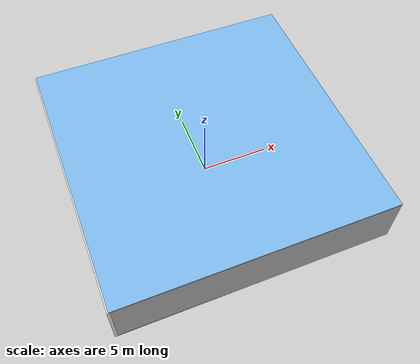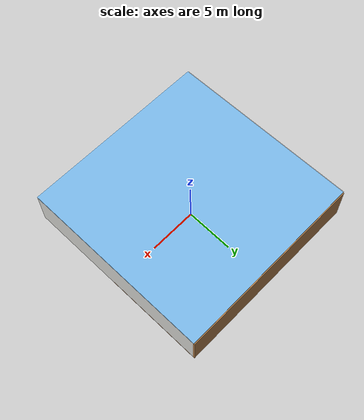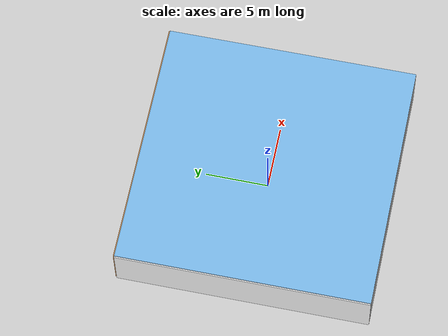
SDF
<sdf version="1.4">
 <world name="default">
  <physics type="ode">
   <max_step_size>0.001</max_step_size>
   <real_time_factor>1</real_time_factor>
   <real_time_update_rate>1000</real_time_update_rate>
   <gravity>0 0 -9.8</gravity>
  </physics>
  <scene><ambient>0.4 0.4 0.4 1</ambient><background>0.7 0.7 0.7 1</background><shadows>1</shadows></scene>
  <model name="Surrounding">
   <static>1</static>
   <link name="Ceiling">
    <collision name="Ceiling_Collision"><geometry><box><size>20 20 0.1</size></box></geometry></collision>
    <visual name="Ceiling_Visual">
     <geometry><box><size>20 20 0.1</size></box></geometry>
     <material>
      <script><uri>file://media/materials/scripts/gazebo.material</uri><name>Gazebo/SkyBlue</name></script>
     </material>
    </visual>
    <pose>0 0 4.05 0 0 0</pose>
   </link>
   <link name="Wall_South">
    <collision name="Wall_South_Collision">
     <geometry><box><size>20 0 4</size></box></geometry>
     <pose>0 0 2 0 -0 0</pose>
    </collision>
    <visual name="Wall_South_Visual">
     <pose>0 0 2 0 -0 0</pose>
     <geometry><box><size>20 0 4</size></box></geometry>
     <material>
      <script><uri>file://media/materials/scripts/gazebo.material</uri><name>Gazebo/JointAnchor</name></script>
     </material>
    </visual>
    <velocity_decay><linear>0</linear><angular>0</angular></velocity_decay>
    <pose>0 -10 0 0 -0 0</pose>
   </link>
   <link name="Wall_East">
    <collision name="Wall_21_Collision">
     <geometry><box><size>20 0 4</size></box></geometry>
     <pose>0 0 2 0 -0 0</pose>
    </collision>
    <visual name="Wall_21_Visual">
     <pose>0 0 2 0 -0 0</pose>
     <geometry><box><size>20 0 4</size></box></geometry>
     <material>
      <script><uri>file://media/materials/scripts/gazebo.material</uri><name>Gazebo/CeilingTiled</name></script>
     </material>
    </visual>
    <velocity_decay><linear>0</linear><angular>0</angular></velocity_decay>
    <pose>10 0 0 0 -0 1.5708</pose>
   </link>
   <link name="Wall_North">
    <collision name="Wall_22_Collision">
     <geometry><box><size>20 0.2 4</size></box></geometry>
     <pose>0 0 2 0 -0 0</pose>
    </collision>
    <visual name="Wall_22_Visual">
     <pose>0 0 2 0 -0 0</pose>
     <geometry><box><size>20 0.2 4</size></box></geometry>
     <material>
      <script><uri>file://media/materials/scripts/gazebo.material</uri><name>Gazebo/Wood</name></script>
     </material>
    </visual>
    <velocity_decay><linear>0</linear><angular>0</angular></velocity_decay>
    <pose>0 10 0 0 -0 0</pose>
   </link>
   <link name="Wall_West">
    <collision name="Wall_23_Collision">
     <geometry><box><size>20 0.2 4</size></box></geometry>
     <pose>0 0 2 0 -0 0</pose>
    </collision>
    <visual name="Wall_23_Visual">
     <pose>0 0 2 0 -0 0</pose>
     <geometry><box><size>20 0.2 4</size></box></geometry>
     <material>
      <script><uri>file://media/materials/scripts/gazebo.material</uri><name>Gazebo/White</name></script>
     </material>
    </visual>
    <velocity_decay><linear>0</linear><angular>0</angular></velocity_decay>
    <pose>-10 0 0 0 0 -1.5708</pose>
   </link>
   <link name="Ground_link">
    <collision name="collision">
     <pose>0 0 .05 0 -0 0</pose>
     <geometry><box><size>20 20 0.1</size></box></geometry>
    </collision>
    <visual name="visual">
     <pose>0 0 .05 0 -0 0</pose>
     <geometry><box><size>20 20 0.1</size></box></geometry>
     <material>
      <script><uri>file://media/materials/scripts/gazebo.material</uri><name>Gazebo/WoodPallet</name></script>
     </material>
    </visual>
   </link>
   <static>1</static>
  </model>
  <spherical_coordinates>
   <surface_model>EARTH_WGS84</surface_model>
   <latitude_deg>0</latitude_deg>
   <longitude_deg>0</longitude_deg>
   <elevation>0</elevation>
   <heading_deg>0</heading_deg>
  </spherical_coordinates>
  <light name="lightball_0" type="diffuse">
   <diffuse>0.8 0.8 0.8 1</diffuse>
   <specular>0.2 0.2 0.2 1</specular>
   <attenuation>
    <range>100</range>
    <constant>0.7</constant>
    <linear>0.01</linear>
    <quadratic>0.001</quadratic>
   </attenuation>
   <direction>-0.5 0.1 -0.9</direction>
   <pose>0.725215382481 -1.34924403638 1.90910680966 0 0 0</pose>
  </light>
  <light name="lightball_1" type="diffuse">
   <diffuse>0.8 0.8 0.8 1</diffuse>
   <specular>0.2 0.2 0.2 1</specular>
   <attenuation>
    <range>100</range>
    <constant>0.7</constant>
    <linear>0.01</linear>
    <quadratic>0.001</quadratic>
   </attenuation>
   <direction>-0.5 0.1 -0.9</direction>
   <pose>-6.66375086045 -7.29081741986 3.76870693468 0 0 0</pose>
  </light>
  <light name="lightball_2" type="diffuse">
   <diffuse>0.8 0.8 0.8 1</diffuse>
   <specular>0.2 0.2 0.2 1</specular>
   <attenuation>
    <range>100</range>
    <constant>0.7</constant>
    <linear>0.01</linear>
    <quadratic>0.001</quadratic>
   </attenuation>
   <direction>-0.5 0.1 -0.9</direction>
   <pose>-4.81395155858 3.61720164261 3.4828899726 0 0 0</pose>
  </light>
  <light name="lightball_3" type="diffuse">
   <diffuse>0.8 0.8 0.8 1</diffuse>
   <specular>0.2 0.2 0.2 1</specular>
   <attenuation>
    <range>100</range>
    <constant>0.7</constant>
    <linear>0.01</linear>
    <quadratic>0.001</quadratic>
   </attenuation>
   <direction>-0.5 0.1 -0.9</direction>
   <pose>3.30504506265 5.53491385809 0.50913672995 0 0 0</pose>
  </light>
  <light name="lightball_4" type="diffuse">
   <diffuse>0.8 0.8 0.8 1</diffuse>
   <specular>0.2 0.2 0.2 1</specular>
   <attenuation>
    <range>100</range>
    <constant>0.7</constant>
    <linear>0.01</linear>
    <quadratic>0.001</quadratic>
   </attenuation>
   <direction>-0.5 0.1 -0.9</direction>
   <pose>-8.87801050813 -9.93423530514 3.28314035362 0 0 0</pose>
  </light>
  <light name="lightball_5" type="diffuse">
   <diffuse>0.8 0.8 0.8 1</diffuse>
   <specular>0.2 0.2 0.2 1</specular>
   <attenuation>
    <range>100</range>
    <constant>0.7</constant>
    <linear>0.01</linear>
    <quadratic>0.001</quadratic>
   </attenuation>
   <direction>-0.5 0.1 -0.9</direction>
   <pose>5.15648383489 -1.83712331071 1.14753272019 0 0 0</pose>
  </light>
  <include>
   <uri>model://construction_cone</uri>
   <pose>-1.86039019385 -8.16036327427 0 0 0 1.17655179179</pose>
  </include>
  <include>
   <uri>model://construction_cone</uri>
   <pose>2.15014156441 0.446872967888 0 0 0 1.39552916863</pose>
  </include>
  <include><uri>model://cabinet</uri><pose>0.54343358739 7.87600474269 0 0 0 0.479281094057</pose></include>
  <include><uri>model://cabinet</uri><pose>4.59240590322 -5.24869826538 0 0 0 0.272463346375</pose></include>
  <include>
   <uri>model://robocup_3Dsim_goal</uri>
   <pose>3.94852460301 -0.821971701447 0 0 0 0.0312991049042</pose>
  </include>
 </world>
</sdf>

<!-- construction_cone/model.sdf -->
<sdf version="1.5">
  <model name="Construction Cone">
    <link name="link">
      <collision name="collision">
        <geometry>
          <mesh>
            <scale>10 10 10</scale>
            <uri>file://isr-testbed/construction_cone/meshes/construction_cone.dae</uri>
          </mesh>
        </geometry>
      </collision>
      <visual name="visual">
        <geometry>
          <mesh>
            <scale>10 10 10</scale>
            <uri>file://isr-testbed/construction_cone/meshes/construction_cone.dae</uri>
          </mesh>
        </geometry>
      </visual>
    </link>
  </model>
</sdf>

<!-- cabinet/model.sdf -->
<sdf version="1.5">
  <model name="cabinet">
    <static>true</static>
    <link name="cabinet_bottom_plate">
      <inertial>
        <pose>0 0 -1 0 0 0</pose>
        <inertia>
          <ixx>2.050000</ixx>
          <ixy>0</ixy>
          <ixz>0</ixz>
          <iyy>2.050000</iyy>
          <iyz>0</iyz>
          <izz>2.050000</izz>
        </inertia>
        <mass>25.000000</mass>
      </inertial>
      <collision name="cabinet_bottom_plate_geom">
        <pose>0 0 0.010000 0 0 0</pose>
        <geometry>
          <box>
            <size>0.450000 0.450000 0.020000</size>
          </box>
        </geometry>
      </collision>
      <visual name="cabinet_bottom_plate_geom_visual">
        <pose>0 0 0.010000 0 0 0</pose>
        <geometry>
          <box>
            <size>0.450000 0.450000 0.020000</size>
          </box>
        </geometry>
        <material>
          <script>
            <uri>model://media/materials/scripts/gazebo.material</uri>
            <name>Gazebo/Wood</name>
          </script>
        </material>
      </visual>
      <collision name="cabinet_bottom_plate_geom_cabinet_back_plate">
        <pose>0.235000 0 0.510000 0 0 0</pose>
        <geometry>
          <box>
            <size>0.020000 0.450000 1.020000</size>
          </box>
        </geometry>
      </collision>
      <visual name="cabinet_bottom_plate_geom_cabinet_back_plate_visual">
        <pose>0.235000 0 0.510000 0 0 0</pose>
        <geometry>
          <box>
            <size>0.020000 0.450000 1.020000</size>
          </box>
        </geometry>
        <material>
          <script>
            <uri>model://media/materials/scripts/gazebo.material</uri>
            <name>Gazebo/Wood</name>
          </script>
        </material>
      </visual>
      <collision name="cabinet_bottom_plate_geom_cabinet_left_plate">
        <pose>0 0.235000 0.510000 0 0 0</pose>
        <geometry>
          <box>
            <size>0.450000 0.020000 1.020000</size>
          </box>
        </geometry>
      </collision>
      <visual name="cabinet_bottom_plate_geom_cabinet_left_plate_visual">
        <pose>0 0.235000 0.510000 0 0 0</pose>
        <geometry>
          <box>
            <size>0.450000 0.020000 1.020000</size>
          </box>
        </geometry>
        <material>
          <script>
            <uri>model://media/materials/scripts/gazebo.material</uri>
            <name>Gazebo/Wood</name>
          </script>
        </material>
      </visual>
      <collision name="cabinet_bottom_plate_geom_cabinet_middle_plate">
        <pose>0 0 0.510000 0 0 0</pose>
        <geometry>
          <box>
            <size>0.450000 0.450000 0.020000</size>
          </box>
        </geometry>
      </collision>
      <visual name="cabinet_bottom_plate_geom_cabinet_middle_plate_visual">
        <pose>0 0 0.510000 0 0 0</pose>
        <geometry>
          <box>
            <size>0.450000 0.450000 0.020000</size>
          </box>
        </geometry>
        <material>
          <script>
            <uri>model://media/materials/scripts/gazebo.material</uri>
            <name>Gazebo/Wood</name>
          </script>
        </material>
      </visual>
      <collision name="cabinet_bottom_plate_geom_cabinet_right_plate">
        <pose>0 -0.235000 0.510000 0 0 0</pose>
        <geometry>
          <box>
            <size>0.450000 0.020000 1.020000</size>
          </box>
        </geometry>
      </collision>
      <visual name="cabinet_bottom_plate_geom_cabinet_right_plate_visual">
        <pose>0 -0.235000 0.510000 0 0 0</pose>
        <geometry>
          <box>
            <size>0.450000 0.020000 1.020000</size>
          </box>
        </geometry>
        <material>
          <script>
            <uri>model://media/materials/scripts/gazebo.material</uri>
            <name>Gazebo/Wood</name>
          </script>
        </material>
      </visual>
      <collision name="cabinet_bottom_plate_geom_cabinet_top_plate">
        <pose>0 0 1.010000 0 0 0</pose>
        <geometry>
          <box>
            <size>0.450000 0.450000 0.020000</size>
          </box>
        </geometry>
      </collision>
      <visual name="cabinet_bottom_plate_geom_cabinet_top_plate_visual">
        <pose>0 0 1.010000 0 0 0</pose>
        <geometry>
          <box>
            <size>0.450000 0.450000 0.020000</size>
          </box>
        </geometry>
        <material>
          <script>
            <uri>model://media/materials/scripts/gazebo.material</uri>
            <name>Gazebo/Wood</name>
          </script>
        </material>
      </visual>
    </link>
  </model>
</sdf>

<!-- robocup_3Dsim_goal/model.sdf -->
<sdf version="1.5">
  <model name="robocup_3d_goal">
    <static>true</static>
    <link name="left_post">
      <pose>0 1.05 0.45 0 0 0</pose>
      <collision name="collision">
        <geometry>
          <cylinder>
            <radius>0.05</radius>
            <length>0.9</length>
          </cylinder>
        </geometry>
      </collision>
      <visual name="visual">
        <geometry>
          <cylinder>
            <radius>0.05</radius>
            <length>0.9</length>
          </cylinder>
        </geometry>
        <material>
          <script>
            <uri>file://media/materials/scripts/gazebo.material</uri>
            <name>Gazebo/ZincYellow</name>
          </script>
        </material>
      </visual>
    </link>
    <link name="left_support_horiz_lower">
      <pose>0.30 1.05 0.01 0 0 0</pose>
      <collision name="collision">
        <geometry>
          <box>
            <size>0.50 0.02 0.02</size>
          </box>
        </geometry>
      </collision>
      <visual name="visual">
        <geometry>
          <box>
            <size>0.50 0.02 0.02</size>
          </box>
        </geometry>
        <material>
          <script>
            <uri>file://media/materials/scripts/gazebo.material</uri>
            <name>Gazebo/White</name>
          </script>
        </material>
      </visual>
    </link>
    <link name="left_support_horiz_upper">
      <pose>0.30 1.05 0.79 0 0 0</pose>
      <collision name="collision">
        <geometry>
          <box>
            <size>0.50 0.02 0.02</size>
          </box>
        </geometry>
      </collision>
      <visual name="visual">
        <geometry>
          <box>
            <size>0.50 0.02 0.02</size>
          </box>
        </geometry>
        <material>
          <script>
            <uri>file://media/materials/scripts/gazebo.material</uri>
            <name>Gazebo/White</name>
          </script>
        </material>
      </visual>
    </link>
    <link name="left_support_vertical">
      <pose>0.56 1.05 0.4 0 1.5708 0</pose>
      <collision name="collision">
        <geometry>
          <box>
            <size>0.80 0.02 0.02</size>
          </box>
        </geometry>
      </collision>
      <visual name="visual">
        <geometry>
          <box>
            <size>0.80 0.02 0.02</size>
          </box>
        </geometry>
        <material>
          <script>
            <uri>file://media/materials/scripts/gazebo.material</uri>
            <name>Gazebo/White</name>
          </script>
        </material>
      </visual>
    </link>
    <link name="right_support_horiz_lower">
      <pose>0.30 -1.05 0.01 0 0 0</pose>
      <collision name="collision">
        <geometry>
          <box>
            <size>0.50 0.02 0.02</size>
          </box>
        </geometry>
      </collision>
      <visual name="visual">
        <geometry>
          <box>
            <size>0.50 0.02 0.02</size>
          </box>
        </geometry>
        <material>
          <script>
            <uri>file://media/materials/scripts/gazebo.material</uri>
            <name>Gazebo/White</name>
          </script>
        </material>
      </visual>
    </link>
    <link name="right_support_horiz_upper">
      <pose>0.30 -1.05 0.79 0 0 0</pose>
      <collision name="collision">
        <geometry>
          <box>
            <size>0.50 0.02 0.02</size>
          </box>
        </geometry>
      </collision>
      <visual name="visual">
        <geometry>
          <box>
            <size>0.50 0.02 0.02</size>
          </box>
        </geometry>
        <material>
          <script>
            <uri>file://media/materials/scripts/gazebo.material</uri>
            <name>Gazebo/White</name>
          </script>
        </material>
      </visual>
    </link>
    <link name="right_support_vertical">
      <pose>0.56 -1.05 0.4 0 1.5708 0</pose>
      <collision name="collision">
        <geometry>
          <box>
            <size>0.80 0.02 0.02</size>
          </box>
        </geometry>
      </collision>
      <visual name="visual">
        <geometry>
          <box>
            <size>0.80 0.02 0.02</size>
          </box>
        </geometry>
        <material>
          <script>
            <uri>file://media/materials/scripts/gazebo.material</uri>
            <name>Gazebo/White</name>
          </script>
        </material>
      </visual>
    </link>
    <link name="center_support_horiz_lower">
      <pose>0.56 0 0.01 0 1.5708 0</pose>
      <collision name="collision">
        <geometry>
          <box>
            <size>0.02 2.08 0.02</size>
          </box>
        </geometry>
      </collision>
      <visual name="visual">
        <geometry>
          <box>
            <size>0.02 2.08 0.02</size>
          </box>
        </geometry>
        <material>
          <script>
            <uri>file://media/materials/scripts/gazebo.material</uri>
            <name>Gazebo/White</name>
          </script>
        </material>
      </visual>
    </link>
    <link name="center_support_horiz_upper">
      <pose>0.56 0 0.79 0 1.5708 0</pose>
      <collision name="collision">
        <geometry>
          <box>
            <size>0.02 2.08 0.02</size>
          </box>
        </geometry>
      </collision>
      <visual name="visual">
        <geometry>
          <box>
            <size>0.02 2.08 0.02</size>
          </box>
        </geometry>
        <material>
          <script>
            <uri>file://media/materials/scripts/gazebo.material</uri>
            <name>Gazebo/White</name>
          </script>
        </material>
      </visual>
    </link>
    <link name="right_post">
      <pose>0 -1.05 0.45 0 0 0</pose>
      <collision name="collision">
        <geometry>
          <cylinder>
            <radius>0.05</radius>
            <length>0.9</length>
          </cylinder>
        </geometry>
      </collision>
      <visual name="visual">
        <geometry>
          <cylinder>
            <radius>0.05</radius>
            <length>0.9</length>
          </cylinder>
        </geometry>
        <material>
          <script>
            <uri>file://media/materials/scripts/gazebo.material</uri>
            <name>Gazebo/ZincYellow</name>
          </script>
        </material>
      </visual>
    </link>
    <link name="crossbar">
      <pose>0 0 0.85 1.57 1.57 0</pose>
      <collision name="collision">
        <geometry>
          <cylinder>
            <radius>0.05</radius>
            <length>2.0</length>
          </cylinder>
        </geometry>
      </collision>
      <visual name="visual">
        <geometry>
          <cylinder>
            <radius>0.05</radius>
            <length>2.0</length>
          </cylinder>
        </geometry>
        <material>
          <script>
            <uri>file://media/materials/scripts/gazebo.material</uri>
            <name>Gazebo/ZincYellow</name>
          </script>
        </material>
      </visual>
    </link>
    <link name="center_net">
      <pose>0.56 0 0.40 0 0 0</pose>
      <collision name="collision">
        <geometry>
          <box>
            <size>0.01 2.1 0.80</size>
          </box>
        </geometry>
      </collision>
      <visual name="visual">
        <geometry>
          <box>
            <size>0.01 2.1 0.80</size>
          </box>
        </geometry>
        <material>
          <script>
            <uri>model://../model_source/models/robocup09_spl_field/materials/scripts/</uri>
            <uri>model://../model_source/models/robocup09_spl_field/materials/textures/</uri>
            <name>RoboCup/Net</name>
          </script>
        </material>
      </visual>
    </link>
    <link name="left_net">
      <pose>0.30 1.05 0.40 0 0 0</pose>
      <collision name="collision">
        <geometry>
          <box>
            <size>0.50 0.01 0.76</size>
          </box>
        </geometry>
      </collision>
      <visual name="visual">
        <geometry>
          <box>
            <size>0.50 0.01 0.76</size>
          </box>
        </geometry>
        <material>
          <script>
            <uri>model://../model_source/models/robocup09_spl_field/materials/scripts/</uri>
            <uri>model://../model_source/models/robocup09_spl_field/materials/textures/</uri>
            <name>RoboCup/Net</name>
          </script>
        </material>
      </visual>
    </link>
    <link name="right_net">
      <pose>0.30 -1.05 0.40 0 0 0</pose>
      <collision name="collision">
        <geometry>
          <box>
            <size>0.50 0.01 0.76</size>
          </box>
        </geometry>
      </collision>
      <visual name="visual">
        <geometry>
          <box>
            <size>0.50 0.01 0.76</size>
          </box>
        </geometry>
        <material>
          <script>
            <uri>model://../model_source/models/robocup09_spl_field/materials/scripts/</uri>
            <uri>model://../model_source/models/robocup09_spl_field/materials/textures/</uri>
            <name>RoboCup/Net</name>
          </script>
        </material>
      </visual>
    </link>
  </model>
</sdf>
